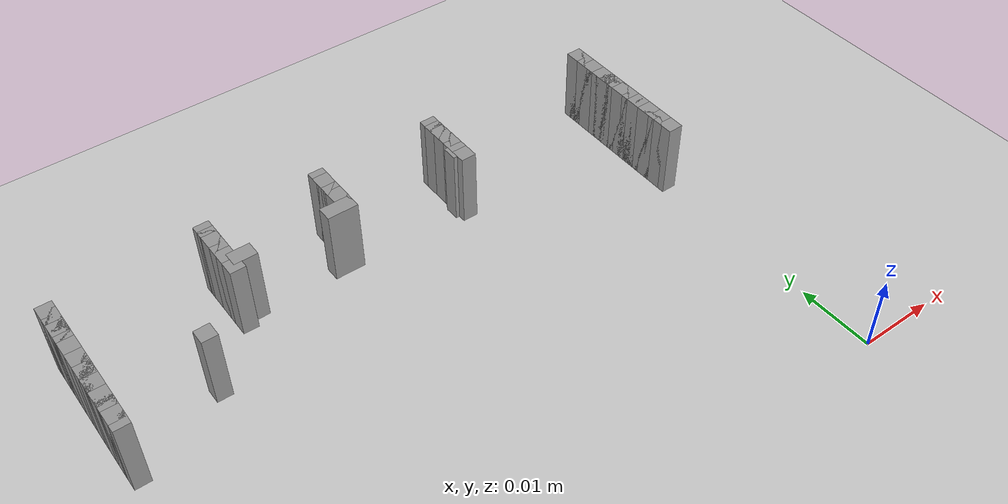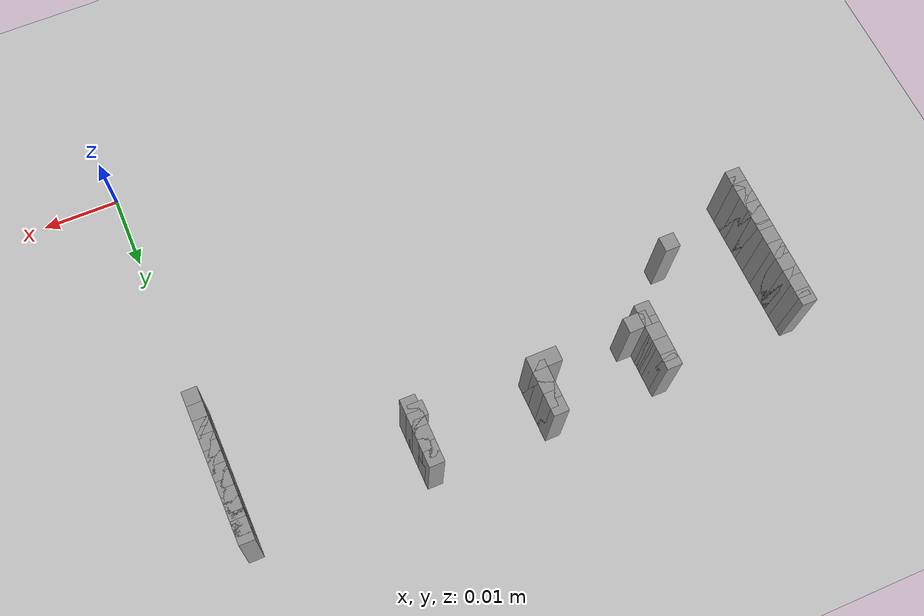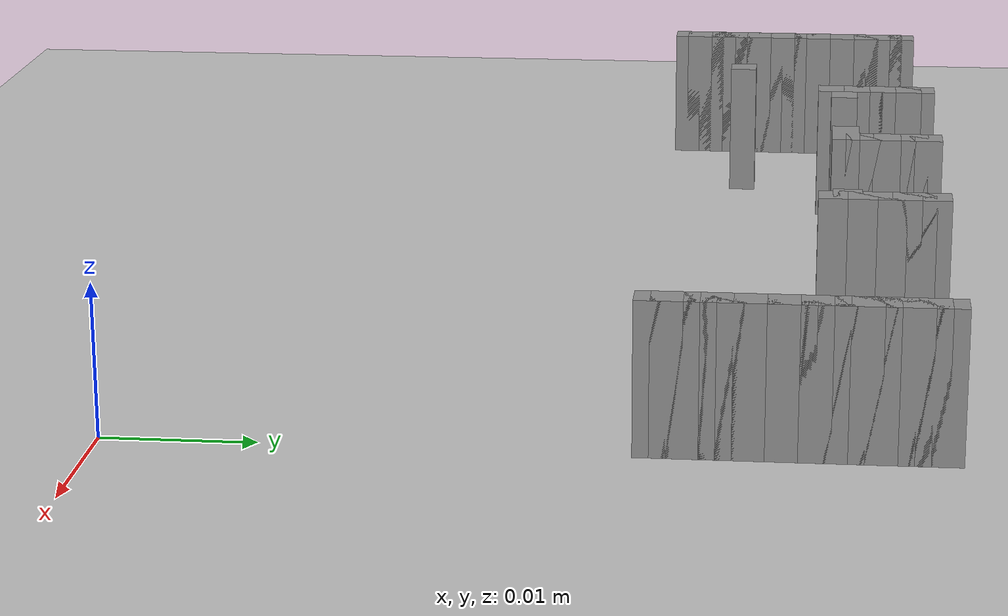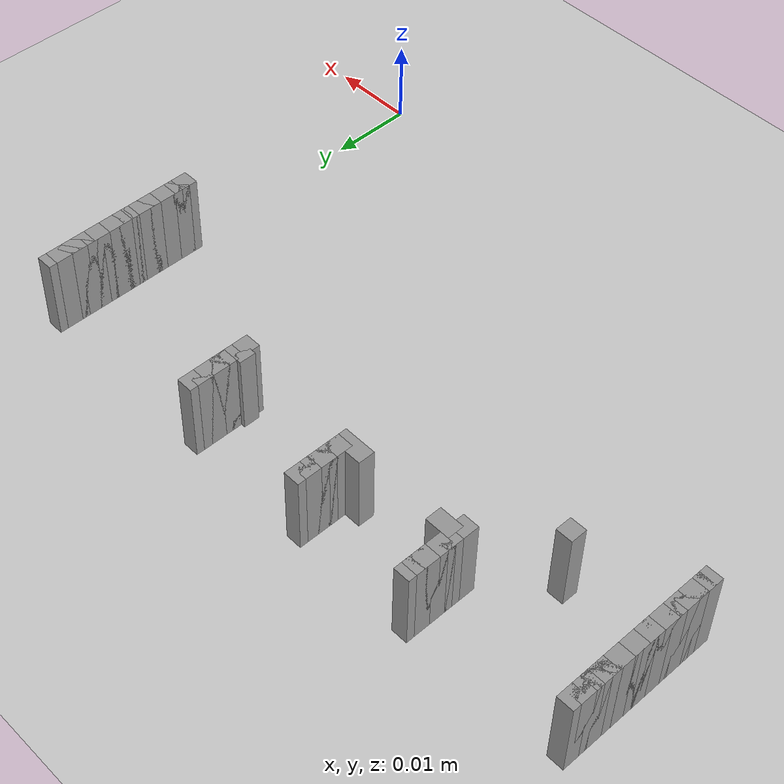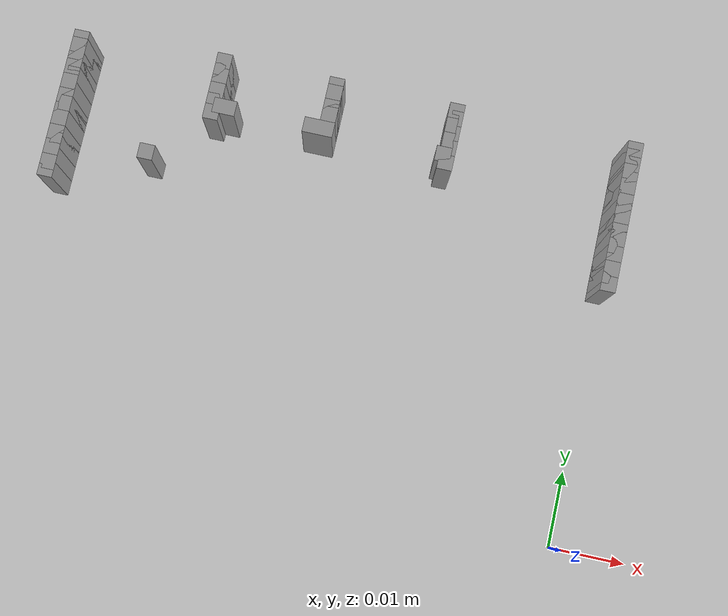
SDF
<sdf version="1.6">
 <world name="GridMap">
  <include><uri>model://sun</uri></include>
  <include><uri>model://ground_plane</uri></include>
  <model name="GridMap">
   <link name="Wall_(74.0,33.0)">
    <collision name="Wall_(74.0,33.0)_Collision">
     <geometry><box><size>0.002 0.002 0.01</size></box></geometry>
     <pose>-0.074 0.033 0.005 0 -0 0</pose>
    </collision>
    <inertial>
     <mass>0.5</mass>
     <pose>0 0.01 0 0 0 0</pose>
     <inertia><ixx>0.004</ixx><ixy>0.001</ixy><ixz>0</ixz><iyy>0.006</iyy><iyz>0</iyz><izz>0.007</izz></inertia>
    </inertial>
    <visual name="Wall_(74.0,33.0)_Visual">
     <geometry><box><size>0.002 0.002 0.01</size></box></geometry>
     <pose>-0.074 0.033 0.005 0 -0 0</pose>
     <material>
      <script><uri>file://media/materials/scripts/gazebo.material</uri><name>Gazebo/Grey</name></script>
      <ambient>1 1 1 1</ambient>
     </material>
     <meta><layer>0</layer></meta>
    </visual>
   </link>
   <link name="Wall_(0.5,34.0)">
    <collision name="Wall_(0.5,34.0)_Collision">
     <geometry><box><size>0.002 0.002 0.01</size></box></geometry>
     <pose>-0.0005 0.034 0.005 0 -0 0</pose>
    </collision>
    <inertial>
     <mass>0.5</mass>
     <pose>0 0.01 0 0 0 0</pose>
     <inertia><ixx>0.004</ixx><ixy>0.001</ixy><ixz>0</ixz><iyy>0.006</iyy><iyz>0</iyz><izz>0.007</izz></inertia>
    </inertial>
    <visual name="Wall_(0.5,34.0)_Visual">
     <geometry><box><size>0.002 0.002 0.01</size></box></geometry>
     <pose>-0.0005 0.034 0.005 0 -0 0</pose>
     <material>
      <script><uri>file://media/materials/scripts/gazebo.material</uri><name>Gazebo/Grey</name></script>
      <ambient>1 1 1 1</ambient>
     </material>
     <meta><layer>0</layer></meta>
    </visual>
   </link>
   <link name="Wall_(74.0,34.0)">
    <collision name="Wall_(74.0,34.0)_Collision">
     <geometry><box><size>0.002 0.002 0.01</size></box></geometry>
     <pose>-0.074 0.034 0.005 0 -0 0</pose>
    </collision>
    <inertial>
     <mass>0.5</mass>
     <pose>0 0.01 0 0 0 0</pose>
     <inertia><ixx>0.004</ixx><ixy>0.001</ixy><ixz>0</ixz><iyy>0.006</iyy><iyz>0</iyz><izz>0.007</izz></inertia>
    </inertial>
    <visual name="Wall_(74.0,34.0)_Visual">
     <geometry><box><size>0.002 0.002 0.01</size></box></geometry>
     <pose>-0.074 0.034 0.005 0 -0 0</pose>
     <material>
      <script><uri>file://media/materials/scripts/gazebo.material</uri><name>Gazebo/Grey</name></script>
      <ambient>1 1 1 1</ambient>
     </material>
     <meta><layer>0</layer></meta>
    </visual>
   </link>
   <link name="Wall_(0.5,35.0)">
    <collision name="Wall_(0.5,35.0)_Collision">
     <geometry><box><size>0.002 0.002 0.01</size></box></geometry>
     <pose>-0.0005 0.035 0.005 0 -0 0</pose>
    </collision>
    <inertial>
     <mass>0.5</mass>
     <pose>0 0.01 0 0 0 0</pose>
     <inertia><ixx>0.004</ixx><ixy>0.001</ixy><ixz>0</ixz><iyy>0.006</iyy><iyz>0</iyz><izz>0.007</izz></inertia>
    </inertial>
    <visual name="Wall_(0.5,35.0)_Visual">
     <geometry><box><size>0.002 0.002 0.01</size></box></geometry>
     <pose>-0.0005 0.035 0.005 0 -0 0</pose>
     <material>
      <script><uri>file://media/materials/scripts/gazebo.material</uri><name>Gazebo/Grey</name></script>
      <ambient>1 1 1 1</ambient>
     </material>
     <meta><layer>0</layer></meta>
    </visual>
   </link>
   <link name="Wall_(74.0,35.0)">
    <collision name="Wall_(74.0,35.0)_Collision">
     <geometry><box><size>0.002 0.002 0.01</size></box></geometry>
     <pose>-0.074 0.035 0.005 0 -0 0</pose>
    </collision>
    <inertial>
     <mass>0.5</mass>
     <pose>0 0.01 0 0 0 0</pose>
     <inertia><ixx>0.004</ixx><ixy>0.001</ixy><ixz>0</ixz><iyy>0.006</iyy><iyz>0</iyz><izz>0.007</izz></inertia>
    </inertial>
    <visual name="Wall_(74.0,35.0)_Visual">
     <geometry><box><size>0.002 0.002 0.01</size></box></geometry>
     <pose>-0.074 0.035 0.005 0 -0 0</pose>
     <material>
      <script><uri>file://media/materials/scripts/gazebo.material</uri><name>Gazebo/Grey</name></script>
      <ambient>1 1 1 1</ambient>
     </material>
     <meta><layer>0</layer></meta>
    </visual>
   </link>
   <link name="Wall_(0.5,36.0)">
    <collision name="Wall_(0.5,36.0)_Collision">
     <geometry><box><size>0.002 0.002 0.01</size></box></geometry>
     <pose>-0.0005 0.036000000000000004 0.005 0 -0 0</pose>
    </collision>
    <inertial>
     <mass>0.5</mass>
     <pose>0 0.01 0 0 0 0</pose>
     <inertia><ixx>0.004</ixx><ixy>0.001</ixy><ixz>0</ixz><iyy>0.006</iyy><iyz>0</iyz><izz>0.007</izz></inertia>
    </inertial>
    <visual name="Wall_(0.5,36.0)_Visual">
     <geometry><box><size>0.002 0.002 0.01</size></box></geometry>
     <pose>-0.0005 0.036000000000000004 0.005 0 -0 0</pose>
     <material>
      <script><uri>file://media/materials/scripts/gazebo.material</uri><name>Gazebo/Grey</name></script>
      <ambient>1 1 1 1</ambient>
     </material>
     <meta><layer>0</layer></meta>
    </visual>
   </link>
   <link name="Wall_(74.0,36.0)">
    <collision name="Wall_(74.0,36.0)_Collision">
     <geometry><box><size>0.002 0.002 0.01</size></box></geometry>
     <pose>-0.074 0.036000000000000004 0.005 0 -0 0</pose>
    </collision>
    <inertial>
     <mass>0.5</mass>
     <pose>0 0.01 0 0 0 0</pose>
     <inertia><ixx>0.004</ixx><ixy>0.001</ixy><ixz>0</ixz><iyy>0.006</iyy><iyz>0</iyz><izz>0.007</izz></inertia>
    </inertial>
    <visual name="Wall_(74.0,36.0)_Visual">
     <geometry><box><size>0.002 0.002 0.01</size></box></geometry>
     <pose>-0.074 0.036000000000000004 0.005 0 -0 0</pose>
     <material>
      <script><uri>file://media/materials/scripts/gazebo.material</uri><name>Gazebo/Grey</name></script>
      <ambient>1 1 1 1</ambient>
     </material>
     <meta><layer>0</layer></meta>
    </visual>
   </link>
   <link name="Wall_(0.5,37.0)">
    <collision name="Wall_(0.5,37.0)_Collision">
     <geometry><box><size>0.002 0.002 0.01</size></box></geometry>
     <pose>-0.0005 0.037 0.005 0 -0 0</pose>
    </collision>
    <inertial>
     <mass>0.5</mass>
     <pose>0 0.01 0 0 0 0</pose>
     <inertia><ixx>0.004</ixx><ixy>0.001</ixy><ixz>0</ixz><iyy>0.006</iyy><iyz>0</iyz><izz>0.007</izz></inertia>
    </inertial>
    <visual name="Wall_(0.5,37.0)_Visual">
     <geometry><box><size>0.002 0.002 0.01</size></box></geometry>
     <pose>-0.0005 0.037 0.005 0 -0 0</pose>
     <material>
      <script><uri>file://media/materials/scripts/gazebo.material</uri><name>Gazebo/Grey</name></script>
      <ambient>1 1 1 1</ambient>
     </material>
     <meta><layer>0</layer></meta>
    </visual>
   </link>
   <link name="Wall_(74.0,37.0)">
    <collision name="Wall_(74.0,37.0)_Collision">
     <geometry><box><size>0.002 0.002 0.01</size></box></geometry>
     <pose>-0.074 0.037 0.005 0 -0 0</pose>
    </collision>
    <inertial>
     <mass>0.5</mass>
     <pose>0 0.01 0 0 0 0</pose>
     <inertia><ixx>0.004</ixx><ixy>0.001</ixy><ixz>0</ixz><iyy>0.006</iyy><iyz>0</iyz><izz>0.007</izz></inertia>
    </inertial>
    <visual name="Wall_(74.0,37.0)_Visual">
     <geometry><box><size>0.002 0.002 0.01</size></box></geometry>
     <pose>-0.074 0.037 0.005 0 -0 0</pose>
     <material>
      <script><uri>file://media/materials/scripts/gazebo.material</uri><name>Gazebo/Grey</name></script>
      <ambient>1 1 1 1</ambient>
     </material>
     <meta><layer>0</layer></meta>
    </visual>
   </link>
   <link name="Wall_(0.5,38.0)">
    <collision name="Wall_(0.5,38.0)_Collision">
     <geometry><box><size>0.002 0.002 0.01</size></box></geometry>
     <pose>-0.0005 0.038 0.005 0 -0 0</pose>
    </collision>
    <inertial>
     <mass>0.5</mass>
     <pose>0 0.01 0 0 0 0</pose>
     <inertia><ixx>0.004</ixx><ixy>0.001</ixy><ixz>0</ixz><iyy>0.006</iyy><iyz>0</iyz><izz>0.007</izz></inertia>
    </inertial>
    <visual name="Wall_(0.5,38.0)_Visual">
     <geometry><box><size>0.002 0.002 0.01</size></box></geometry>
     <pose>-0.0005 0.038 0.005 0 -0 0</pose>
     <material>
      <script><uri>file://media/materials/scripts/gazebo.material</uri><name>Gazebo/Grey</name></script>
      <ambient>1 1 1 1</ambient>
     </material>
     <meta><layer>0</layer></meta>
    </visual>
   </link>
   <link name="Wall_(62.0,38.0)">
    <collision name="Wall_(62.0,38.0)_Collision">
     <geometry><box><size>0.002 0.002 0.01</size></box></geometry>
     <pose>-0.062 0.038 0.005 0 -0 0</pose>
    </collision>
    <inertial>
     <mass>0.5</mass>
     <pose>0 0.01 0 0 0 0</pose>
     <inertia><ixx>0.004</ixx><ixy>0.001</ixy><ixz>0</ixz><iyy>0.006</iyy><iyz>0</iyz><izz>0.007</izz></inertia>
    </inertial>
    <visual name="Wall_(62.0,38.0)_Visual">
     <geometry><box><size>0.002 0.002 0.01</size></box></geometry>
     <pose>-0.062 0.038 0.005 0 -0 0</pose>
     <material>
      <script><uri>file://media/materials/scripts/gazebo.material</uri><name>Gazebo/Grey</name></script>
      <ambient>1 1 1 1</ambient>
     </material>
     <meta><layer>0</layer></meta>
    </visual>
   </link>
   <link name="Wall_(74.0,38.0)">
    <collision name="Wall_(74.0,38.0)_Collision">
     <geometry><box><size>0.002 0.002 0.01</size></box></geometry>
     <pose>-0.074 0.038 0.005 0 -0 0</pose>
    </collision>
    <inertial>
     <mass>0.5</mass>
     <pose>0 0.01 0 0 0 0</pose>
     <inertia><ixx>0.004</ixx><ixy>0.001</ixy><ixz>0</ixz><iyy>0.006</iyy><iyz>0</iyz><izz>0.007</izz></inertia>
    </inertial>
    <visual name="Wall_(74.0,38.0)_Visual">
     <geometry><box><size>0.002 0.002 0.01</size></box></geometry>
     <pose>-0.074 0.038 0.005 0 -0 0</pose>
     <material>
      <script><uri>file://media/materials/scripts/gazebo.material</uri><name>Gazebo/Grey</name></script>
      <ambient>1 1 1 1</ambient>
     </material>
     <meta><layer>0</layer></meta>
    </visual>
   </link>
   <link name="Wall_(0.5,39.0)">
    <collision name="Wall_(0.5,39.0)_Collision">
     <geometry><box><size>0.002 0.002 0.01</size></box></geometry>
     <pose>-0.0005 0.039 0.005 0 -0 0</pose>
    </collision>
    <inertial>
     <mass>0.5</mass>
     <pose>0 0.01 0 0 0 0</pose>
     <inertia><ixx>0.004</ixx><ixy>0.001</ixy><ixz>0</ixz><iyy>0.006</iyy><iyz>0</iyz><izz>0.007</izz></inertia>
    </inertial>
    <visual name="Wall_(0.5,39.0)_Visual">
     <geometry><box><size>0.002 0.002 0.01</size></box></geometry>
     <pose>-0.0005 0.039 0.005 0 -0 0</pose>
     <material>
      <script><uri>file://media/materials/scripts/gazebo.material</uri><name>Gazebo/Grey</name></script>
      <ambient>1 1 1 1</ambient>
     </material>
     <meta><layer>0</layer></meta>
    </visual>
   </link>
   <link name="Wall_(74.0,39.0)">
    <collision name="Wall_(74.0,39.0)_Collision">
     <geometry><box><size>0.002 0.002 0.01</size></box></geometry>
     <pose>-0.074 0.039 0.005 0 -0 0</pose>
    </collision>
    <inertial>
     <mass>0.5</mass>
     <pose>0 0.01 0 0 0 0</pose>
     <inertia><ixx>0.004</ixx><ixy>0.001</ixy><ixz>0</ixz><iyy>0.006</iyy><iyz>0</iyz><izz>0.007</izz></inertia>
    </inertial>
    <visual name="Wall_(74.0,39.0)_Visual">
     <geometry><box><size>0.002 0.002 0.01</size></box></geometry>
     <pose>-0.074 0.039 0.005 0 -0 0</pose>
     <material>
      <script><uri>file://media/materials/scripts/gazebo.material</uri><name>Gazebo/Grey</name></script>
      <ambient>1 1 1 1</ambient>
     </material>
     <meta><layer>0</layer></meta>
    </visual>
   </link>
   <link name="Wall_(0.5,40.0)">
    <collision name="Wall_(0.5,40.0)_Collision">
     <geometry><box><size>0.002 0.002 0.01</size></box></geometry>
     <pose>-0.0005 0.04 0.005 0 -0 0</pose>
    </collision>
    <inertial>
     <mass>0.5</mass>
     <pose>0 0.01 0 0 0 0</pose>
     <inertia><ixx>0.004</ixx><ixy>0.001</ixy><ixz>0</ixz><iyy>0.006</iyy><iyz>0</iyz><izz>0.007</izz></inertia>
    </inertial>
    <visual name="Wall_(0.5,40.0)_Visual">
     <geometry><box><size>0.002 0.002 0.01</size></box></geometry>
     <pose>-0.0005 0.04 0.005 0 -0 0</pose>
     <material>
      <script><uri>file://media/materials/scripts/gazebo.material</uri><name>Gazebo/Grey</name></script>
      <ambient>1 1 1 1</ambient>
     </material>
     <meta><layer>0</layer></meta>
    </visual>
   </link>
   <link name="Wall_(74.0,40.0)">
    <collision name="Wall_(74.0,40.0)_Collision">
     <geometry><box><size>0.002 0.002 0.01</size></box></geometry>
     <pose>-0.074 0.04 0.005 0 -0 0</pose>
    </collision>
    <inertial>
     <mass>0.5</mass>
     <pose>0 0.01 0 0 0 0</pose>
     <inertia><ixx>0.004</ixx><ixy>0.001</ixy><ixz>0</ixz><iyy>0.006</iyy><iyz>0</iyz><izz>0.007</izz></inertia>
    </inertial>
    <visual name="Wall_(74.0,40.0)_Visual">
     <geometry><box><size>0.002 0.002 0.01</size></box></geometry>
     <pose>-0.074 0.04 0.005 0 -0 0</pose>
     <material>
      <script><uri>file://media/materials/scripts/gazebo.material</uri><name>Gazebo/Grey</name></script>
      <ambient>1 1 1 1</ambient>
     </material>
     <meta><layer>0</layer></meta>
    </visual>
   </link>
   <link name="Wall_(0.5,41.0)">
    <collision name="Wall_(0.5,41.0)_Collision">
     <geometry><box><size>0.002 0.002 0.01</size></box></geometry>
     <pose>-0.0005 0.041 0.005 0 -0 0</pose>
    </collision>
    <inertial>
     <mass>0.5</mass>
     <pose>0 0.01 0 0 0 0</pose>
     <inertia><ixx>0.004</ixx><ixy>0.001</ixy><ixz>0</ixz><iyy>0.006</iyy><iyz>0</iyz><izz>0.007</izz></inertia>
    </inertial>
    <visual name="Wall_(0.5,41.0)_Visual">
     <geometry><box><size>0.002 0.002 0.01</size></box></geometry>
     <pose>-0.0005 0.041 0.005 0 -0 0</pose>
     <material>
      <script><uri>file://media/materials/scripts/gazebo.material</uri><name>Gazebo/Grey</name></script>
      <ambient>1 1 1 1</ambient>
     </material>
     <meta><layer>0</layer></meta>
    </visual>
   </link>
   <link name="Wall_(74.0,41.0)">
    <collision name="Wall_(74.0,41.0)_Collision">
     <geometry><box><size>0.002 0.002 0.01</size></box></geometry>
     <pose>-0.074 0.041 0.005 0 -0 0</pose>
    </collision>
    <inertial>
     <mass>0.5</mass>
     <pose>0 0.01 0 0 0 0</pose>
     <inertia><ixx>0.004</ixx><ixy>0.001</ixy><ixz>0</ixz><iyy>0.006</iyy><iyz>0</iyz><izz>0.007</izz></inertia>
    </inertial>
    <visual name="Wall_(74.0,41.0)_Visual">
     <geometry><box><size>0.002 0.002 0.01</size></box></geometry>
     <pose>-0.074 0.041 0.005 0 -0 0</pose>
     <material>
      <script><uri>file://media/materials/scripts/gazebo.material</uri><name>Gazebo/Grey</name></script>
      <ambient>1 1 1 1</ambient>
     </material>
     <meta><layer>0</layer></meta>
    </visual>
   </link>
   <link name="Wall_(0.5,42.0)">
    <collision name="Wall_(0.5,42.0)_Collision">
     <geometry><box><size>0.002 0.002 0.01</size></box></geometry>
     <pose>-0.0005 0.042 0.005 0 -0 0</pose>
    </collision>
    <inertial>
     <mass>0.5</mass>
     <pose>0 0.01 0 0 0 0</pose>
     <inertia><ixx>0.004</ixx><ixy>0.001</ixy><ixz>0</ixz><iyy>0.006</iyy><iyz>0</iyz><izz>0.007</izz></inertia>
    </inertial>
    <visual name="Wall_(0.5,42.0)_Visual">
     <geometry><box><size>0.002 0.002 0.01</size></box></geometry>
     <pose>-0.0005 0.042 0.005 0 -0 0</pose>
     <material>
      <script><uri>file://media/materials/scripts/gazebo.material</uri><name>Gazebo/Grey</name></script>
      <ambient>1 1 1 1</ambient>
     </material>
     <meta><layer>0</layer></meta>
    </visual>
   </link>
   <link name="Wall_(74.0,42.0)">
    <collision name="Wall_(74.0,42.0)_Collision">
     <geometry><box><size>0.002 0.002 0.01</size></box></geometry>
     <pose>-0.074 0.042 0.005 0 -0 0</pose>
    </collision>
    <inertial>
     <mass>0.5</mass>
     <pose>0 0.01 0 0 0 0</pose>
     <inertia><ixx>0.004</ixx><ixy>0.001</ixy><ixz>0</ixz><iyy>0.006</iyy><iyz>0</iyz><izz>0.007</izz></inertia>
    </inertial>
    <visual name="Wall_(74.0,42.0)_Visual">
     <geometry><box><size>0.002 0.002 0.01</size></box></geometry>
     <pose>-0.074 0.042 0.005 0 -0 0</pose>
     <material>
      <script><uri>file://media/materials/scripts/gazebo.material</uri><name>Gazebo/Grey</name></script>
      <ambient>1 1 1 1</ambient>
     </material>
     <meta><layer>0</layer></meta>
    </visual>
   </link>
   <link name="Wall_(0.5,43.0)">
    <collision name="Wall_(0.5,43.0)_Collision">
     <geometry><box><size>0.002 0.002 0.01</size></box></geometry>
     <pose>-0.0005 0.043000000000000003 0.005 0 -0 0</pose>
    </collision>
    <inertial>
     <mass>0.5</mass>
     <pose>0 0.01 0 0 0 0</pose>
     <inertia><ixx>0.004</ixx><ixy>0.001</ixy><ixz>0</ixz><iyy>0.006</iyy><iyz>0</iyz><izz>0.007</izz></inertia>
    </inertial>
    <visual name="Wall_(0.5,43.0)_Visual">
     <geometry><box><size>0.002 0.002 0.01</size></box></geometry>
     <pose>-0.0005 0.043000000000000003 0.005 0 -0 0</pose>
     <material>
      <script><uri>file://media/materials/scripts/gazebo.material</uri><name>Gazebo/Grey</name></script>
      <ambient>1 1 1 1</ambient>
     </material>
     <meta><layer>0</layer></meta>
    </visual>
   </link>
   <link name="Wall_(74.0,43.0)">
    <collision name="Wall_(74.0,43.0)_Collision">
     <geometry><box><size>0.002 0.002 0.01</size></box></geometry>
     <pose>-0.074 0.043000000000000003 0.005 0 -0 0</pose>
    </collision>
    <inertial>
     <mass>0.5</mass>
     <pose>0 0.01 0 0 0 0</pose>
     <inertia><ixx>0.004</ixx><ixy>0.001</ixy><ixz>0</ixz><iyy>0.006</iyy><iyz>0</iyz><izz>0.007</izz></inertia>
    </inertial>
    <visual name="Wall_(74.0,43.0)_Visual">
     <geometry><box><size>0.002 0.002 0.01</size></box></geometry>
     <pose>-0.074 0.043000000000000003 0.005 0 -0 0</pose>
     <material>
      <script><uri>file://media/materials/scripts/gazebo.material</uri><name>Gazebo/Grey</name></script>
      <ambient>1 1 1 1</ambient>
     </material>
     <meta><layer>0</layer></meta>
    </visual>
   </link>
   <link name="Wall_(0.5,44.0)">
    <collision name="Wall_(0.5,44.0)_Collision">
     <geometry><box><size>0.002 0.002 0.01</size></box></geometry>
     <pose>-0.0005 0.044 0.005 0 -0 0</pose>
    </collision>
    <inertial>
     <mass>0.5</mass>
     <pose>0 0.01 0 0 0 0</pose>
     <inertia><ixx>0.004</ixx><ixy>0.001</ixy><ixz>0</ixz><iyy>0.006</iyy><iyz>0</iyz><izz>0.007</izz></inertia>
    </inertial>
    <visual name="Wall_(0.5,44.0)_Visual">
     <geometry><box><size>0.002 0.002 0.01</size></box></geometry>
     <pose>-0.0005 0.044 0.005 0 -0 0</pose>
     <material>
      <script><uri>file://media/materials/scripts/gazebo.material</uri><name>Gazebo/Grey</name></script>
      <ambient>1 1 1 1</ambient>
     </material>
     <meta><layer>0</layer></meta>
    </visual>
   </link>
   <link name="Wall_(74.0,44.0)">
    <collision name="Wall_(74.0,44.0)_Collision">
     <geometry><box><size>0.002 0.002 0.01</size></box></geometry>
     <pose>-0.074 0.044 0.005 0 -0 0</pose>
    </collision>
    <inertial>
     <mass>0.5</mass>
     <pose>0 0.01 0 0 0 0</pose>
     <inertia><ixx>0.004</ixx><ixy>0.001</ixy><ixz>0</ixz><iyy>0.006</iyy><iyz>0</iyz><izz>0.007</izz></inertia>
    </inertial>
    <visual name="Wall_(74.0,44.0)_Visual">
     <geometry><box><size>0.002 0.002 0.01</size></box></geometry>
     <pose>-0.074 0.044 0.005 0 -0 0</pose>
     <material>
      <script><uri>file://media/materials/scripts/gazebo.material</uri><name>Gazebo/Grey</name></script>
      <ambient>1 1 1 1</ambient>
     </material>
     <meta><layer>0</layer></meta>
    </visual>
   </link>
   <link name="Wall_(0.5,45.0)">
    <collision name="Wall_(0.5,45.0)_Collision">
     <geometry><box><size>0.002 0.002 0.01</size></box></geometry>
     <pose>-0.0005 0.045 0.005 0 -0 0</pose>
    </collision>
    <inertial>
     <mass>0.5</mass>
     <pose>0 0.01 0 0 0 0</pose>
     <inertia><ixx>0.004</ixx><ixy>0.001</ixy><ixz>0</ixz><iyy>0.006</iyy><iyz>0</iyz><izz>0.007</izz></inertia>
    </inertial>
    <visual name="Wall_(0.5,45.0)_Visual">
     <geometry><box><size>0.002 0.002 0.01</size></box></geometry>
     <pose>-0.0005 0.045 0.005 0 -0 0</pose>
     <material>
      <script><uri>file://media/materials/scripts/gazebo.material</uri><name>Gazebo/Grey</name></script>
      <ambient>1 1 1 1</ambient>
     </material>
     <meta><layer>0</layer></meta>
    </visual>
   </link>
   <link name="Wall_(24.0,45.0)">
    <collision name="Wall_(24.0,45.0)_Collision">
     <geometry><box><size>0.002 0.002 0.01</size></box></geometry>
     <pose>-0.024 0.045 0.005 0 -0 0</pose>
    </collision>
    <inertial>
     <mass>0.5</mass>
     <pose>0 0.01 0 0 0 0</pose>
     <inertia><ixx>0.004</ixx><ixy>0.001</ixy><ixz>0</ixz><iyy>0.006</iyy><iyz>0</iyz><izz>0.007</izz></inertia>
    </inertial>
    <visual name="Wall_(24.0,45.0)_Visual">
     <geometry><box><size>0.002 0.002 0.01</size></box></geometry>
     <pose>-0.024 0.045 0.005 0 -0 0</pose>
     <material>
      <script><uri>file://media/materials/scripts/gazebo.material</uri><name>Gazebo/Grey</name></script>
      <ambient>1 1 1 1</ambient>
     </material>
     <meta><layer>0</layer></meta>
    </visual>
   </link>
   <link name="Wall_(55.0,45.0)">
    <collision name="Wall_(55.0,45.0)_Collision">
     <geometry><box><size>0.002 0.002 0.01</size></box></geometry>
     <pose>-0.055 0.045 0.005 0 -0 0</pose>
    </collision>
    <inertial>
     <mass>0.5</mass>
     <pose>0 0.01 0 0 0 0</pose>
     <inertia><ixx>0.004</ixx><ixy>0.001</ixy><ixz>0</ixz><iyy>0.006</iyy><iyz>0</iyz><izz>0.007</izz></inertia>
    </inertial>
    <visual name="Wall_(55.0,45.0)_Visual">
     <geometry><box><size>0.002 0.002 0.01</size></box></geometry>
     <pose>-0.055 0.045 0.005 0 -0 0</pose>
     <material>
      <script><uri>file://media/materials/scripts/gazebo.material</uri><name>Gazebo/Grey</name></script>
      <ambient>1 1 1 1</ambient>
     </material>
     <meta><layer>0</layer></meta>
    </visual>
   </link>
   <link name="Wall_(74.0,45.0)">
    <collision name="Wall_(74.0,45.0)_Collision">
     <geometry><box><size>0.002 0.002 0.01</size></box></geometry>
     <pose>-0.074 0.045 0.005 0 -0 0</pose>
    </collision>
    <inertial>
     <mass>0.5</mass>
     <pose>0 0.01 0 0 0 0</pose>
     <inertia><ixx>0.004</ixx><ixy>0.001</ixy><ixz>0</ixz><iyy>0.006</iyy><iyz>0</iyz><izz>0.007</izz></inertia>
    </inertial>
    <visual name="Wall_(74.0,45.0)_Visual">
     <geometry><box><size>0.002 0.002 0.01</size></box></geometry>
     <pose>-0.074 0.045 0.005 0 -0 0</pose>
     <material>
      <script><uri>file://media/materials/scripts/gazebo.material</uri><name>Gazebo/Grey</name></script>
      <ambient>1 1 1 1</ambient>
     </material>
     <meta><layer>0</layer></meta>
    </visual>
   </link>
   <link name="Wall_(0.5,46.0)">
    <collision name="Wall_(0.5,46.0)_Collision">
     <geometry><box><size>0.002 0.002 0.01</size></box></geometry>
     <pose>-0.0005 0.046 0.005 0 -0 0</pose>
    </collision>
    <inertial>
     <mass>0.5</mass>
     <pose>0 0.01 0 0 0 0</pose>
     <inertia><ixx>0.004</ixx><ixy>0.001</ixy><ixz>0</ixz><iyy>0.006</iyy><iyz>0</iyz><izz>0.007</izz></inertia>
    </inertial>
    <visual name="Wall_(0.5,46.0)_Visual">
     <geometry><box><size>0.002 0.002 0.01</size></box></geometry>
     <pose>-0.0005 0.046 0.005 0 -0 0</pose>
     <material>
      <script><uri>file://media/materials/scripts/gazebo.material</uri><name>Gazebo/Grey</name></script>
      <ambient>1 1 1 1</ambient>
     </material>
     <meta><layer>0</layer></meta>
    </visual>
   </link>
   <link name="Wall_(24.5,46.0)">
    <collision name="Wall_(24.5,46.0)_Collision">
     <geometry><box><size>0.002 0.002 0.01</size></box></geometry>
     <pose>-0.0245 0.046 0.005 0 -0 0</pose>
    </collision>
    <inertial>
     <mass>0.5</mass>
     <pose>0 0.01 0 0 0 0</pose>
     <inertia><ixx>0.004</ixx><ixy>0.001</ixy><ixz>0</ixz><iyy>0.006</iyy><iyz>0</iyz><izz>0.007</izz></inertia>
    </inertial>
    <visual name="Wall_(24.5,46.0)_Visual">
     <geometry><box><size>0.002 0.002 0.01</size></box></geometry>
     <pose>-0.0245 0.046 0.005 0 -0 0</pose>
     <material>
      <script><uri>file://media/materials/scripts/gazebo.material</uri><name>Gazebo/Grey</name></script>
      <ambient>1 1 1 1</ambient>
     </material>
     <meta><layer>0</layer></meta>
    </visual>
   </link>
   <link name="Wall_(41.0,46.0)">
    <collision name="Wall_(41.0,46.0)_Collision">
     <geometry><box><size>0.004 0.002 0.01</size></box></geometry>
     <pose>-0.041 0.046 0.005 0 -0 0</pose>
    </collision>
    <inertial>
     <mass>0.5</mass>
     <pose>0 0.01 0 0 0 0</pose>
     <inertia><ixx>0.004</ixx><ixy>0.001</ixy><ixz>0</ixz><iyy>0.006</iyy><iyz>0</iyz><izz>0.007</izz></inertia>
    </inertial>
    <visual name="Wall_(41.0,46.0)_Visual">
     <geometry><box><size>0.004 0.002 0.01</size></box></geometry>
     <pose>-0.041 0.046 0.005 0 -0 0</pose>
     <material>
      <script><uri>file://media/materials/scripts/gazebo.material</uri><name>Gazebo/Grey</name></script>
      <ambient>1 1 1 1</ambient>
     </material>
     <meta><layer>0</layer></meta>
    </visual>
   </link>
   <link name="Wall_(53.5,46.0)">
    <collision name="Wall_(53.5,46.0)_Collision">
     <geometry><box><size>0.003 0.002 0.01</size></box></geometry>
     <pose>-0.0535 0.046 0.005 0 -0 0</pose>
    </collision>
    <inertial>
     <mass>0.5</mass>
     <pose>0 0.01 0 0 0 0</pose>
     <inertia><ixx>0.004</ixx><ixy>0.001</ixy><ixz>0</ixz><iyy>0.006</iyy><iyz>0</iyz><izz>0.007</izz></inertia>
    </inertial>
    <visual name="Wall_(53.5,46.0)_Visual">
     <geometry><box><size>0.003 0.002 0.01</size></box></geometry>
     <pose>-0.0535 0.046 0.005 0 -0 0</pose>
     <material>
      <script><uri>file://media/materials/scripts/gazebo.material</uri><name>Gazebo/Grey</name></script>
      <ambient>1 1 1 1</ambient>
     </material>
     <meta><layer>0</layer></meta>
    </visual>
   </link>
   <link name="Wall_(74.0,46.0)">
    <collision name="Wall_(74.0,46.0)_Collision">
     <geometry><box><size>0.002 0.002 0.01</size></box></geometry>
     <pose>-0.074 0.046 0.005 0 -0 0</pose>
    </collision>
    <inertial>
     <mass>0.5</mass>
     <pose>0 0.01 0 0 0 0</pose>
     <inertia><ixx>0.004</ixx><ixy>0.001</ixy><ixz>0</ixz><iyy>0.006</iyy><iyz>0</iyz><izz>0.007</izz></inertia>
    </inertial>
    <visual name="Wall_(74.0,46.0)_Visual">
     <geometry><box><size>0.002 0.002 0.01</size></box></geometry>
     <pose>-0.074 0.046 0.005 0 -0 0</pose>
     <material>
      <script><uri>file://media/materials/scripts/gazebo.material</uri><name>Gazebo/Grey</name></script>
      <ambient>1 1 1 1</ambient>
     </material>
     <meta><layer>0</layer></meta>
    </visual>
   </link>
   <link name="Wall_(0.5,47.0)">
    <collision name="Wall_(0.5,47.0)_Collision">
     <geometry><box><size>0.002 0.002 0.01</size></box></geometry>
     <pose>-0.0005 0.047 0.005 0 -0 0</pose>
    </collision>
    <inertial>
     <mass>0.5</mass>
     <pose>0 0.01 0 0 0 0</pose>
     <inertia><ixx>0.004</ixx><ixy>0.001</ixy><ixz>0</ixz><iyy>0.006</iyy><iyz>0</iyz><izz>0.007</izz></inertia>
    </inertial>
    <visual name="Wall_(0.5,47.0)_Visual">
     <geometry><box><size>0.002 0.002 0.01</size></box></geometry>
     <pose>-0.0005 0.047 0.005 0 -0 0</pose>
     <material>
      <script><uri>file://media/materials/scripts/gazebo.material</uri><name>Gazebo/Grey</name></script>
      <ambient>1 1 1 1</ambient>
     </material>
     <meta><layer>0</layer></meta>
    </visual>
   </link>
   <link name="Wall_(24.0,47.0)">
    <collision name="Wall_(24.0,47.0)_Collision">
     <geometry><box><size>0.002 0.002 0.01</size></box></geometry>
     <pose>-0.024 0.047 0.005 0 -0 0</pose>
    </collision>
    <inertial>
     <mass>0.5</mass>
     <pose>0 0.01 0 0 0 0</pose>
     <inertia><ixx>0.004</ixx><ixy>0.001</ixy><ixz>0</ixz><iyy>0.006</iyy><iyz>0</iyz><izz>0.007</izz></inertia>
    </inertial>
    <visual name="Wall_(24.0,47.0)_Visual">
     <geometry><box><size>0.002 0.002 0.01</size></box></geometry>
     <pose>-0.024 0.047 0.005 0 -0 0</pose>
     <material>
      <script><uri>file://media/materials/scripts/gazebo.material</uri><name>Gazebo/Grey</name></script>
      <ambient>1 1 1 1</ambient>
     </material>
     <meta><layer>0</layer></meta>
    </visual>
   </link>
   <link name="Wall_(40.0,47.0)">
    <collision name="Wall_(40.0,47.0)_Collision">
     <geometry><box><size>0.002 0.002 0.01</size></box></geometry>
     <pose>-0.04 0.047 0.005 0 -0 0</pose>
    </collision>
    <inertial>
     <mass>0.5</mass>
     <pose>0 0.01 0 0 0 0</pose>
     <inertia><ixx>0.004</ixx><ixy>0.001</ixy><ixz>0</ixz><iyy>0.006</iyy><iyz>0</iyz><izz>0.007</izz></inertia>
    </inertial>
    <visual name="Wall_(40.0,47.0)_Visual">
     <geometry><box><size>0.002 0.002 0.01</size></box></geometry>
     <pose>-0.04 0.047 0.005 0 -0 0</pose>
     <material>
      <script><uri>file://media/materials/scripts/gazebo.material</uri><name>Gazebo/Grey</name></script>
      <ambient>1 1 1 1</ambient>
     </material>
     <meta><layer>0</layer></meta>
    </visual>
   </link>
   <link name="Wall_(55.0,47.0)">
    <collision name="Wall_(55.0,47.0)_Collision">
     <geometry><box><size>0.002 0.002 0.01</size></box></geometry>
     <pose>-0.055 0.047 0.005 0 -0 0</pose>
    </collision>
    <inertial>
     <mass>0.5</mass>
     <pose>0 0.01 0 0 0 0</pose>
     <inertia><ixx>0.004</ixx><ixy>0.001</ixy><ixz>0</ixz><iyy>0.006</iyy><iyz>0</iyz><izz>0.007</izz></inertia>
    </inertial>
    <visual name="Wall_(55.0,47.0)_Visual">
     <geometry><box><size>0.002 0.002 0.01</size></box></geometry>
     <pose>-0.055 0.047 0.005 0 -0 0</pose>
     <material>
      <script><uri>file://media/materials/scripts/gazebo.material</uri><name>Gazebo/Grey</name></script>
      <ambient>1 1 1 1</ambient>
     </material>
     <meta><layer>0</layer></meta>
    </visual>
   </link>
   <link name="Wall_(74.0,47.0)">
    <collision name="Wall_(74.0,47.0)_Collision">
     <geometry><box><size>0.002 0.002 0.01</size></box></geometry>
     <pose>-0.074 0.047 0.005 0 -0 0</pose>
    </collision>
    <inertial>
     <mass>0.5</mass>
     <pose>0 0.01 0 0 0 0</pose>
     <inertia><ixx>0.004</ixx><ixy>0.001</ixy><ixz>0</ixz><iyy>0.006</iyy><iyz>0</iyz><izz>0.007</izz></inertia>
    </inertial>
    <visual name="Wall_(74.0,47.0)_Visual">
     <geometry><box><size>0.002 0.002 0.01</size></box></geometry>
     <pose>-0.074 0.047 0.005 0 -0 0</pose>
     <material>
      <script><uri>file://media/materials/scripts/gazebo.material</uri><name>Gazebo/Grey</name></script>
      <ambient>1 1 1 1</ambient>
     </material>
     <meta><layer>0</layer></meta>
    </visual>
   </link>
   <link name="Wall_(0.5,48.0)">
    <collision name="Wall_(0.5,48.0)_Collision">
     <geometry><box><size>0.002 0.002 0.01</size></box></geometry>
     <pose>-0.0005 0.048 0.005 0 -0 0</pose>
    </collision>
    <inertial>
     <mass>0.5</mass>
     <pose>0 0.01 0 0 0 0</pose>
     <inertia><ixx>0.004</ixx><ixy>0.001</ixy><ixz>0</ixz><iyy>0.006</iyy><iyz>0</iyz><izz>0.007</izz></inertia>
    </inertial>
    <visual name="Wall_(0.5,48.0)_Visual">
     <geometry><box><size>0.002 0.002 0.01</size></box></geometry>
     <pose>-0.0005 0.048 0.005 0 -0 0</pose>
     <material>
      <script><uri>file://media/materials/scripts/gazebo.material</uri><name>Gazebo/Grey</name></script>
      <ambient>1 1 1 1</ambient>
     </material>
     <meta><layer>0</layer></meta>
    </visual>
   </link>
   <link name="Wall_(24.0,48.0)">
    <collision name="Wall_(24.0,48.0)_Collision">
     <geometry><box><size>0.002 0.002 0.01</size></box></geometry>
     <pose>-0.024 0.048 0.005 0 -0 0</pose>
    </collision>
    <inertial>
     <mass>0.5</mass>
     <pose>0 0.01 0 0 0 0</pose>
     <inertia><ixx>0.004</ixx><ixy>0.001</ixy><ixz>0</ixz><iyy>0.006</iyy><iyz>0</iyz><izz>0.007</izz></inertia>
    </inertial>
    <visual name="Wall_(24.0,48.0)_Visual">
     <geometry><box><size>0.002 0.002 0.01</size></box></geometry>
     <pose>-0.024 0.048 0.005 0 -0 0</pose>
     <material>
      <script><uri>file://media/materials/scripts/gazebo.material</uri><name>Gazebo/Grey</name></script>
      <ambient>1 1 1 1</ambient>
     </material>
     <meta><layer>0</layer></meta>
    </visual>
   </link>
   <link name="Wall_(40.0,48.0)">
    <collision name="Wall_(40.0,48.0)_Collision">
     <geometry><box><size>0.002 0.002 0.01</size></box></geometry>
     <pose>-0.04 0.048 0.005 0 -0 0</pose>
    </collision>
    <inertial>
     <mass>0.5</mass>
     <pose>0 0.01 0 0 0 0</pose>
     <inertia><ixx>0.004</ixx><ixy>0.001</ixy><ixz>0</ixz><iyy>0.006</iyy><iyz>0</iyz><izz>0.007</izz></inertia>
    </inertial>
    <visual name="Wall_(40.0,48.0)_Visual">
     <geometry><box><size>0.002 0.002 0.01</size></box></geometry>
     <pose>-0.04 0.048 0.005 0 -0 0</pose>
     <material>
      <script><uri>file://media/materials/scripts/gazebo.material</uri><name>Gazebo/Grey</name></script>
      <ambient>1 1 1 1</ambient>
     </material>
     <meta><layer>0</layer></meta>
    </visual>
   </link>
   <link name="Wall_(55.0,48.0)">
    <collision name="Wall_(55.0,48.0)_Collision">
     <geometry><box><size>0.002 0.002 0.01</size></box></geometry>
     <pose>-0.055 0.048 0.005 0 -0 0</pose>
    </collision>
    <inertial>
     <mass>0.5</mass>
     <pose>0 0.01 0 0 0 0</pose>
     <inertia><ixx>0.004</ixx><ixy>0.001</ixy><ixz>0</ixz><iyy>0.006</iyy><iyz>0</iyz><izz>0.007</izz></inertia>
    </inertial>
    <visual name="Wall_(55.0,48.0)_Visual">
     <geometry><box><size>0.002 0.002 0.01</size></box></geometry>
     <pose>-0.055 0.048 0.005 0 -0 0</pose>
     <material>
      <script><uri>file://media/materials/scripts/gazebo.material</uri><name>Gazebo/Grey</name></script>
      <ambient>1 1 1 1</ambient>
     </material>
     <meta><layer>0</layer></meta>
    </visual>
   </link>
   <link name="Wall_(74.0,48.0)">
    <collision name="Wall_(74.0,48.0)_Collision">
     <geometry><box><size>0.002 0.002 0.01</size></box></geometry>
     <pose>-0.074 0.048 0.005 0 -0 0</pose>
    </collision>
    <inertial>
     <mass>0.5</mass>
     <pose>0 0.01 0 0 0 0</pose>
     <inertia><ixx>0.004</ixx><ixy>0.001</ixy><ixz>0</ixz><iyy>0.006</iyy><iyz>0</iyz><izz>0.007</izz></inertia>
    </inertial>
    <visual name="Wall_(74.0,48.0)_Visual">
     <geometry><box><size>0.002 0.002 0.01</size></box></geometry>
     <pose>-0.074 0.048 0.005 0 -0 0</pose>
     <material>
      <script><uri>file://media/materials/scripts/gazebo.material</uri><name>Gazebo/Grey</name></script>
      <ambient>1 1 1 1</ambient>
     </material>
     <meta><layer>0</layer></meta>
    </visual>
   </link>
   <link name="Wall_(0.5,49.0)">
    <collision name="Wall_(0.5,49.0)_Collision">
     <geometry><box><size>0.002 0.002 0.01</size></box></geometry>
     <pose>-0.0005 0.049 0.005 0 -0 0</pose>
    </collision>
    <inertial>
     <mass>0.5</mass>
     <pose>0 0.01 0 0 0 0</pose>
     <inertia><ixx>0.004</ixx><ixy>0.001</ixy><ixz>0</ixz><iyy>0.006</iyy><iyz>0</iyz><izz>0.007</izz></inertia>
    </inertial>
    <visual name="Wall_(0.5,49.0)_Visual">
     <geometry><box><size>0.002 0.002 0.01</size></box></geometry>
     <pose>-0.0005 0.049 0.005 0 -0 0</pose>
     <material>
      <script><uri>file://media/materials/scripts/gazebo.material</uri><name>Gazebo/Grey</name></script>
      <ambient>1 1 1 1</ambient>
     </material>
     <meta><layer>0</layer></meta>
    </visual>
   </link>
   <link name="Wall_(24.0,49.0)">
    <collision name="Wall_(24.0,49.0)_Collision">
     <geometry><box><size>0.002 0.002 0.01</size></box></geometry>
     <pose>-0.024 0.049 0.005 0 -0 0</pose>
    </collision>
    <inertial>
     <mass>0.5</mass>
     <pose>0 0.01 0 0 0 0</pose>
     <inertia><ixx>0.004</ixx><ixy>0.001</ixy><ixz>0</ixz><iyy>0.006</iyy><iyz>0</iyz><izz>0.007</izz></inertia>
    </inertial>
    <visual name="Wall_(24.0,49.0)_Visual">
     <geometry><box><size>0.002 0.002 0.01</size></box></geometry>
     <pose>-0.024 0.049 0.005 0 -0 0</pose>
     <material>
      <script><uri>file://media/materials/scripts/gazebo.material</uri><name>Gazebo/Grey</name></script>
      <ambient>1 1 1 1</ambient>
     </material>
     <meta><layer>0</layer></meta>
    </visual>
   </link>
   <link name="Wall_(40.0,49.0)">
    <collision name="Wall_(40.0,49.0)_Collision">
     <geometry><box><size>0.002 0.002 0.01</size></box></geometry>
     <pose>-0.04 0.049 0.005 0 -0 0</pose>
    </collision>
    <inertial>
     <mass>0.5</mass>
     <pose>0 0.01 0 0 0 0</pose>
     <inertia><ixx>0.004</ixx><ixy>0.001</ixy><ixz>0</ixz><iyy>0.006</iyy><iyz>0</iyz><izz>0.007</izz></inertia>
    </inertial>
    <visual name="Wall_(40.0,49.0)_Visual">
     <geometry><box><size>0.002 0.002 0.01</size></box></geometry>
     <pose>-0.04 0.049 0.005 0 -0 0</pose>
     <material>
      <script><uri>file://media/materials/scripts/gazebo.material</uri><name>Gazebo/Grey</name></script>
      <ambient>1 1 1 1</ambient>
     </material>
     <meta><layer>0</layer></meta>
    </visual>
   </link>
   <link name="Wall_(55.0,49.0)">
    <collision name="Wall_(55.0,49.0)_Collision">
     <geometry><box><size>0.002 0.002 0.01</size></box></geometry>
     <pose>-0.055 0.049 0.005 0 -0 0</pose>
    </collision>
    <inertial>
     <mass>0.5</mass>
     <pose>0 0.01 0 0 0 0</pose>
     <inertia><ixx>0.004</ixx><ixy>0.001</ixy><ixz>0</ixz><iyy>0.006</iyy><iyz>0</iyz><izz>0.007</izz></inertia>
    </inertial>
    <visual name="Wall_(55.0,49.0)_Visual">
     <geometry><box><size>0.002 0.002 0.01</size></box></geometry>
     <pose>-0.055 0.049 0.005 0 -0 0</pose>
     <material>
      <script><uri>file://media/materials/scripts/gazebo.material</uri><name>Gazebo/Grey</name></script>
      <ambient>1 1 1 1</ambient>
     </material>
     <meta><layer>0</layer></meta>
    </visual>
   </link>
   <link name="Wall_(74.0,49.0)">
    <collision name="Wall_(74.0,49.0)_Collision">
     <geometry><box><size>0.002 0.002 0.01</size></box></geometry>
     <pose>-0.074 0.049 0.005 0 -0 0</pose>
    </collision>
    <inertial>
     <mass>0.5</mass>
     <pose>0 0.01 0 0 0 0</pose>
     <inertia><ixx>0.004</ixx><ixy>0.001</ixy><ixz>0</ixz><iyy>0.006</iyy><iyz>0</iyz><izz>0.007</izz></inertia>
    </inertial>
    <visual name="Wall_(74.0,49.0)_Visual">
     <geometry><box><size>0.002 0.002 0.01</size></box></geometry>
     <pose>-0.074 0.049 0.005 0 -0 0</pose>
     <material>
      <script><uri>file://media/materials/scripts/gazebo.material</uri><name>Gazebo/Grey</name></script>
      <ambient>1 1 1 1</ambient>
     </material>
     <meta><layer>0</layer></meta>
    </visual>
   </link>
   <link name="Wall_(0.5,50.0)">
    <collision name="Wall_(0.5,50.0)_Collision">
     <geometry><box><size>0.002 0.002 0.01</size></box></geometry>
     <pose>-0.0005 0.05 0.005 0 -0 0</pose>
    </collision>
    <inertial>
     <mass>0.5</mass>
     <pose>0 0.01 0 0 0 0</pose>
     <inertia><ixx>0.004</ixx><ixy>0.001</ixy><ixz>0</ixz><iyy>0.006</iyy><iyz>0</iyz><izz>0.007</izz></inertia>
    </inertial>
    <visual name="Wall_(0.5,50.0)_Visual">
     <geometry><box><size>0.002 0.002 0.01</size></box></geometry>
     <pose>-0.0005 0.05 0.005 0 -0 0</pose>
     <material>
      <script><uri>file://media/materials/scripts/gazebo.material</uri><name>Gazebo/Grey</name></script>
      <ambient>1 1 1 1</ambient>
     </material>
     <meta><layer>0</layer></meta>
    </visual>
   </link>
   <link name="Wall_(24.0,50.0)">
    <collision name="Wall_(24.0,50.0)_Collision">
     <geometry><box><size>0.002 0.002 0.01</size></box></geometry>
     <pose>-0.024 0.05 0.005 0 -0 0</pose>
    </collision>
    <inertial>
     <mass>0.5</mass>
     <pose>0 0.01 0 0 0 0</pose>
     <inertia><ixx>0.004</ixx><ixy>0.001</ixy><ixz>0</ixz><iyy>0.006</iyy><iyz>0</iyz><izz>0.007</izz></inertia>
    </inertial>
    <visual name="Wall_(24.0,50.0)_Visual">
     <geometry><box><size>0.002 0.002 0.01</size></box></geometry>
     <pose>-0.024 0.05 0.005 0 -0 0</pose>
     <material>
      <script><uri>file://media/materials/scripts/gazebo.material</uri><name>Gazebo/Grey</name></script>
      <ambient>1 1 1 1</ambient>
     </material>
     <meta><layer>0</layer></meta>
    </visual>
   </link>
   <link name="Wall_(40.0,50.0)">
    <collision name="Wall_(40.0,50.0)_Collision">
     <geometry><box><size>0.002 0.002 0.01</size></box></geometry>
     <pose>-0.04 0.05 0.005 0 -0 0</pose>
    </collision>
    <inertial>
     <mass>0.5</mass>
     <pose>0 0.01 0 0 0 0</pose>
     <inertia><ixx>0.004</ixx><ixy>0.001</ixy><ixz>0</ixz><iyy>0.006</iyy><iyz>0</iyz><izz>0.007</izz></inertia>
    </inertial>
    <visual name="Wall_(40.0,50.0)_Visual">
     <geometry><box><size>0.002 0.002 0.01</size></box></geometry>
     <pose>-0.04 0.05 0.005 0 -0 0</pose>
     <material>
      <script><uri>file://media/materials/scripts/gazebo.material</uri><name>Gazebo/Grey</name></script>
      <ambient>1 1 1 1</ambient>
     </material>
     <meta><layer>0</layer></meta>
    </visual>
   </link>
   <link name="Wall_(55.0,50.0)">
    <collision name="Wall_(55.0,50.0)_Collision">
     <geometry><box><size>0.002 0.002 0.01</size></box></geometry>
     <pose>-0.055 0.05 0.005 0 -0 0</pose>
    </collision>
    <inertial>
     <mass>0.5</mass>
     <pose>0 0.01 0 0 0 0</pose>
     <inertia><ixx>0.004</ixx><ixy>0.001</ixy><ixz>0</ixz><iyy>0.006</iyy><iyz>0</iyz><izz>0.007</izz></inertia>
    </inertial>
    <visual name="Wall_(55.0,50.0)_Visual">
     <geometry><box><size>0.002 0.002 0.01</size></box></geometry>
     <pose>-0.055 0.05 0.005 0 -0 0</pose>
     <material>
      <script><uri>file://media/materials/scripts/gazebo.material</uri><name>Gazebo/Grey</name></script>
      <ambient>1 1 1 1</ambient>
     </material>
     <meta><layer>0</layer></meta>
    </visual>
   </link>
   <link name="Wall_(74.0,50.0)">
    <collision name="Wall_(74.0,50.0)_Collision">
     <geometry><box><size>0.002 0.002 0.01</size></box></geometry>
     <pose>-0.074 0.05 0.005 0 -0 0</pose>
    </collision>
    <inertial>
     <mass>0.5</mass>
     <pose>0 0.01 0 0 0 0</pose>
     <inertia><ixx>0.004</ixx><ixy>0.001</ixy><ixz>0</ixz><iyy>0.006</iyy><iyz>0</iyz><izz>0.007</izz></inertia>
    </inertial>
    <visual name="Wall_(74.0,50.0)_Visual">
     <geometry><box><size>0.002 0.002 0.01</size></box></geometry>
     <pose>-0.074 0.05 0.005 0 -0 0</pose>
     <material>
      <script><uri>file://media/materials/scripts/gazebo.material</uri><name>Gazebo/Grey</name></script>
      <ambient>1 1 1 1</ambient>
     </material>
     <meta><layer>0</layer></meta>
    </visual>
   </link>
   <link name="Wall_(0.5,51.0)">
    <collision name="Wall_(0.5,51.0)_Collision">
     <geometry><box><size>0.002 0.002 0.01</size></box></geometry>
     <pose>-0.0005 0.051000000000000004 0.005 0 -0 0</pose>
    </collision>
    <inertial>
     <mass>0.5</mass>
     <pose>0 0.01 0 0 0 0</pose>
     <inertia><ixx>0.004</ixx><ixy>0.001</ixy><ixz>0</ixz><iyy>0.006</iyy><iyz>0</iyz><izz>0.007</izz></inertia>
    </inertial>
    <visual name="Wall_(0.5,51.0)_Visual">
     <geometry><box><size>0.002 0.002 0.01</size></box></geometry>
     <pose>-0.0005 0.051000000000000004 0.005 0 -0 0</pose>
     <material>
      <script><uri>file://media/materials/scripts/gazebo.material</uri><name>Gazebo/Grey</name></script>
      <ambient>1 1 1 1</ambient>
     </material>
     <meta><layer>0</layer></meta>
    </visual>
   </link>
   <link name="Wall_(24.0,51.0)">
    <collision name="Wall_(24.0,51.0)_Collision">
     <geometry><box><size>0.002 0.002 0.01</size></box></geometry>
     <pose>-0.024 0.051000000000000004 0.005 0 -0 0</pose>
    </collision>
    <inertial>
     <mass>0.5</mass>
     <pose>0 0.01 0 0 0 0</pose>
     <inertia><ixx>0.004</ixx><ixy>0.001</ixy><ixz>0</ixz><iyy>0.006</iyy><iyz>0</iyz><izz>0.007</izz></inertia>
    </inertial>
    <visual name="Wall_(24.0,51.0)_Visual">
     <geometry><box><size>0.002 0.002 0.01</size></box></geometry>
     <pose>-0.024 0.051000000000000004 0.005 0 -0 0</pose>
     <material>
      <script><uri>file://media/materials/scripts/gazebo.material</uri><name>Gazebo/Grey</name></script>
      <ambient>1 1 1 1</ambient>
     </material>
     <meta><layer>0</layer></meta>
    </visual>
   </link>
   <link name="Wall_(40.0,51.0)">
    <collision name="Wall_(40.0,51.0)_Collision">
     <geometry><box><size>0.002 0.002 0.01</size></box></geometry>
     <pose>-0.04 0.051000000000000004 0.005 0 -0 0</pose>
    </collision>
    <inertial>
     <mass>0.5</mass>
     <pose>0 0.01 0 0 0 0</pose>
     <inertia><ixx>0.004</ixx><ixy>0.001</ixy><ixz>0</ixz><iyy>0.006</iyy><iyz>0</iyz><izz>0.007</izz></inertia>
    </inertial>
    <visual name="Wall_(40.0,51.0)_Visual">
     <geometry><box><size>0.002 0.002 0.01</size></box></geometry>
     <pose>-0.04 0.051000000000000004 0.005 0 -0 0</pose>
     <material>
      <script><uri>file://media/materials/scripts/gazebo.material</uri><name>Gazebo/Grey</name></script>
      <ambient>1 1 1 1</ambient>
     </material>
     <meta><layer>0</layer></meta>
    </visual>
   </link>
   <link name="Wall_(55.0,51.0)">
    <collision name="Wall_(55.0,51.0)_Collision">
     <geometry><box><size>0.002 0.002 0.01</size></box></geometry>
     <pose>-0.055 0.051000000000000004 0.005 0 -0 0</pose>
    </collision>
    <inertial>
     <mass>0.5</mass>
     <pose>0 0.01 0 0 0 0</pose>
     <inertia><ixx>0.004</ixx><ixy>0.001</ixy><ixz>0</ixz><iyy>0.006</iyy><iyz>0</iyz><izz>0.007</izz></inertia>
    </inertial>
    <visual name="Wall_(55.0,51.0)_Visual">
     <geometry><box><size>0.002 0.002 0.01</size></box></geometry>
     <pose>-0.055 0.051000000000000004 0.005 0 -0 0</pose>
     <material>
      <script><uri>file://media/materials/scripts/gazebo.material</uri><name>Gazebo/Grey</name></script>
      <ambient>1 1 1 1</ambient>
     </material>
     <meta><layer>0</layer></meta>
    </visual>
   </link>
   <link name="Wall_(74.0,51.0)">
    <collision name="Wall_(74.0,51.0)_Collision">
     <geometry><box><size>0.002 0.002 0.01</size></box></geometry>
     <pose>-0.074 0.051000000000000004 0.005 0 -0 0</pose>
    </collision>
    <inertial>
     <mass>0.5</mass>
     <pose>0 0.01 0 0 0 0</pose>
     <inertia><ixx>0.004</ixx><ixy>0.001</ixy><ixz>0</ixz><iyy>0.006</iyy><iyz>0</iyz><izz>0.007</izz></inertia>
    </inertial>
    <visual name="Wall_(74.0,51.0)_Visual">
     <geometry><box><size>0.002 0.002 0.01</size></box></geometry>
     <pose>-0.074 0.051000000000000004 0.005 0 -0 0</pose>
     <material>
      <script><uri>file://media/materials/scripts/gazebo.material</uri><name>Gazebo/Grey</name></script>
      <ambient>1 1 1 1</ambient>
     </material>
     <meta><layer>0</layer></meta>
    </visual>
   </link>
   <link name="Wall_(0.5,52.0)">
    <collision name="Wall_(0.5,52.0)_Collision">
     <geometry><box><size>0.002 0.002 0.01</size></box></geometry>
     <pose>-0.0005 0.052000000000000005 0.005 0 -0 0</pose>
    </collision>
    <inertial>
     <mass>0.5</mass>
     <pose>0 0.01 0 0 0 0</pose>
     <inertia><ixx>0.004</ixx><ixy>0.001</ixy><ixz>0</ixz><iyy>0.006</iyy><iyz>0</iyz><izz>0.007</izz></inertia>
    </inertial>
    <visual name="Wall_(0.5,52.0)_Visual">
     <geometry><box><size>0.002 0.002 0.01</size></box></geometry>
     <pose>-0.0005 0.052000000000000005 0.005 0 -0 0</pose>
     <material>
      <script><uri>file://media/materials/scripts/gazebo.material</uri><name>Gazebo/Grey</name></script>
      <ambient>1 1 1 1</ambient>
     </material>
     <meta><layer>0</layer></meta>
    </visual>
   </link>
   <link name="Wall_(24.0,52.0)">
    <collision name="Wall_(24.0,52.0)_Collision">
     <geometry><box><size>0.002 0.002 0.01</size></box></geometry>
     <pose>-0.024 0.052000000000000005 0.005 0 -0 0</pose>
    </collision>
    <inertial>
     <mass>0.5</mass>
     <pose>0 0.01 0 0 0 0</pose>
     <inertia><ixx>0.004</ixx><ixy>0.001</ixy><ixz>0</ixz><iyy>0.006</iyy><iyz>0</iyz><izz>0.007</izz></inertia>
    </inertial>
    <visual name="Wall_(24.0,52.0)_Visual">
     <geometry><box><size>0.002 0.002 0.01</size></box></geometry>
     <pose>-0.024 0.052000000000000005 0.005 0 -0 0</pose>
     <material>
      <script><uri>file://media/materials/scripts/gazebo.material</uri><name>Gazebo/Grey</name></script>
      <ambient>1 1 1 1</ambient>
     </material>
     <meta><layer>0</layer></meta>
    </visual>
   </link>
   <link name="Wall_(40.0,52.0)">
    <collision name="Wall_(40.0,52.0)_Collision">
     <geometry><box><size>0.002 0.002 0.01</size></box></geometry>
     <pose>-0.04 0.052000000000000005 0.005 0 -0 0</pose>
    </collision>
    <inertial>
     <mass>0.5</mass>
     <pose>0 0.01 0 0 0 0</pose>
     <inertia><ixx>0.004</ixx><ixy>0.001</ixy><ixz>0</ixz><iyy>0.006</iyy><iyz>0</iyz><izz>0.007</izz></inertia>
    </inertial>
    <visual name="Wall_(40.0,52.0)_Visual">
     <geometry><box><size>0.002 0.002 0.01</size></box></geometry>
     <pose>-0.04 0.052000000000000005 0.005 0 -0 0</pose>
     <material>
      <script><uri>file://media/materials/scripts/gazebo.material</uri><name>Gazebo/Grey</name></script>
      <ambient>1 1 1 1</ambient>
     </material>
     <meta><layer>0</layer></meta>
    </visual>
   </link>
   <link name="Wall_(55.0,52.0)">
    <collision name="Wall_(55.0,52.0)_Collision">
     <geometry><box><size>0.002 0.002 0.01</size></box></geometry>
     <pose>-0.055 0.052000000000000005 0.005 0 -0 0</pose>
    </collision>
    <inertial>
     <mass>0.5</mass>
     <pose>0 0.01 0 0 0 0</pose>
     <inertia><ixx>0.004</ixx><ixy>0.001</ixy><ixz>0</ixz><iyy>0.006</iyy><iyz>0</iyz><izz>0.007</izz></inertia>
    </inertial>
    <visual name="Wall_(55.0,52.0)_Visual">
     <geometry><box><size>0.002 0.002 0.01</size></box></geometry>
     <pose>-0.055 0.052000000000000005 0.005 0 -0 0</pose>
     <material>
      <script><uri>file://media/materials/scripts/gazebo.material</uri><name>Gazebo/Grey</name></script>
      <ambient>1 1 1 1</ambient>
     </material>
     <meta><layer>0</layer></meta>
    </visual>
   </link>
   <static>1</static>
  </model>
 </world>
</sdf>
